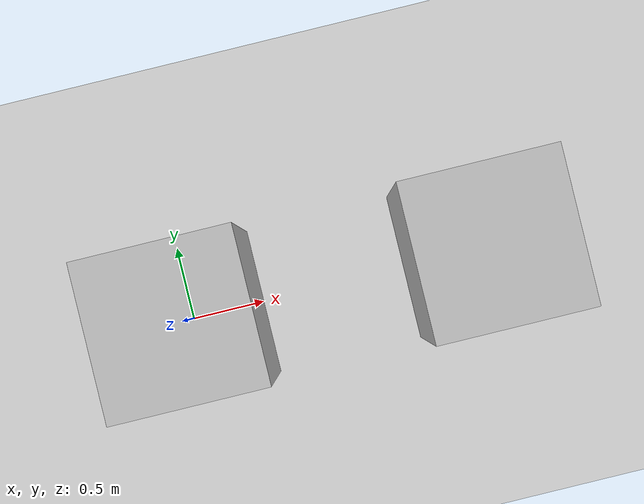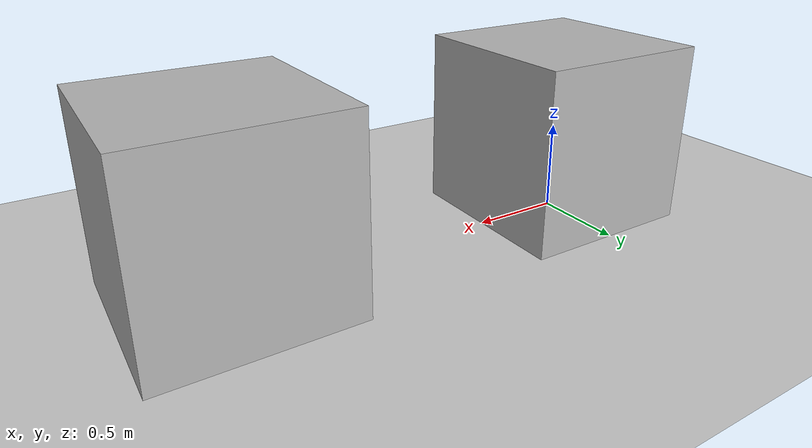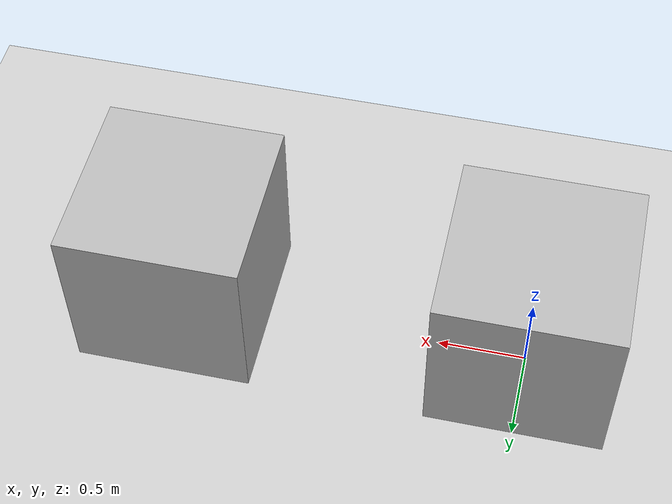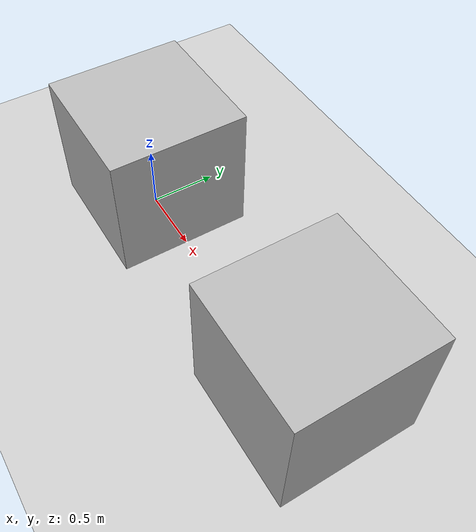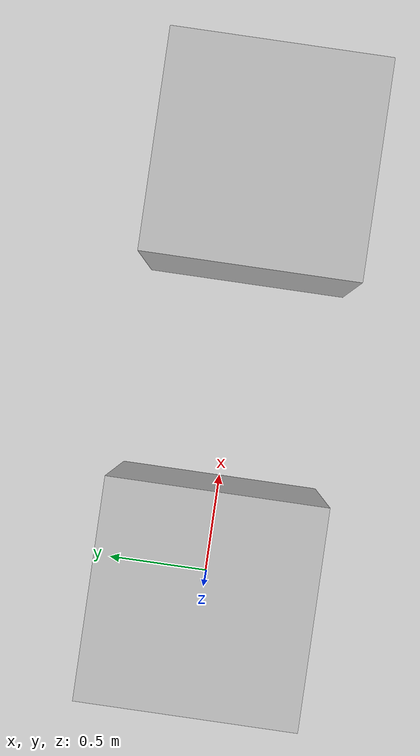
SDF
<?xml version="1.0" ?>
<sdf version="1.4">
  <world name="default">
    <include><uri>model://ground_plane</uri></include>
    <include><uri>model://sun</uri></include>

    <model name="multicamera_1">
      <pose>0 0 0.5 0 0 0</pose>
      <link name="link">
        <collision name="collision">
          <geometry>
            <box>
              <size>1 1 1</size>
            </box>
          </geometry>
        </collision>

        <visual name="visual">
          <geometry>
            <box>
              <size>1 1 1</size>
            </box>
          </geometry>
        </visual>

        <sensor name="cam1" type="multicamera">
          <update_rate>15</update_rate>
          <camera name="left">
            <horizontal_fov>1.3962634</horizontal_fov>
            <image>
              <width>1024</width>
              <height>544</height>
              <format>R8G8B8</format>
            </image>
            <clip>
              <near>0.02</near>
              <far>100</far>
            </clip>
          </camera>
        </sensor>
      </link>
    </model>

    <model name="multicamera_2">
      <pose>0 0 0.5 0 0 0</pose>
      <link name="link">
        <collision name="collision">
          <geometry>
            <box>
              <size>1 1 1</size>
            </box>
          </geometry>
        </collision>

        <visual name="visual">
          <geometry>
            <box>
              <size>1 1 1</size>
            </box>
          </geometry>
        </visual>

        <sensor name="cam2" type="multicamera">
          <update_rate>15</update_rate>
          <camera name="left">
            <horizontal_fov>1.3962634</horizontal_fov>
            <image>
              <width>1024</width>
              <height>544</height>
              <format>R8G8B8</format>
            </image>
            <clip>
              <near>0.02</near>
              <far>100</far>
            </clip>
          </camera>
          <camera name="right">
            <pose>0 -0.1 0 0 0 0</pose>
            <horizontal_fov>1.3962634</horizontal_fov>
            <image>
              <width>1024</width>
              <height>544</height>
              <format>R8G8B8</format>
            </image>
            <clip>
              <near>0.02</near>
              <far>100</far>
            </clip>
          </camera>
        </sensor>
      </link>
    </model>

    <model name="multicamera_3">
      <pose>2 0 0.5 0 0 0</pose>
      <link name="link">
        <collision name="collision">
          <geometry>
            <box>
              <size>1 1 1</size>
            </box>
          </geometry>
        </collision>

        <visual name="visual">
          <geometry>
            <box>
              <size>1 1 1</size>
            </box>
          </geometry>
        </visual>

        <sensor name="cam3" type="multicamera">
          <update_rate>15</update_rate>
          <camera name="top_left">
            <pose>0 -0.1 0.1 0 0 0</pose>
            <horizontal_fov>1.3962634</horizontal_fov>
            <image>
              <width>1024</width>
              <height>544</height>
              <format>R8G8B8</format>
            </image>
            <clip>
              <near>0.02</near>
              <far>100</far>
            </clip>
          </camera>
          <camera name="top_right">
            <pose>0 0.1 0.1 0 0 0</pose>
            <horizontal_fov>1.3962634</horizontal_fov>
            <image>
              <width>1024</width>
              <height>544</height>
              <format>R8G8B8</format>
            </image>
            <clip>
              <near>0.02</near>
              <far>100</far>
            </clip>
          </camera>

          <camera name="bottom_left">
            <pose>0 -0.1 -0.1 0 0 0</pose>
            <horizontal_fov>1.3962634</horizontal_fov>
            <image>
              <width>1024</width>
              <height>544</height>
              <format>R8G8B8</format>
            </image>
            <clip>
              <near>0.02</near>
              <far>100</far>
            </clip>
          </camera>
        </sensor>
      </link>
    </model>

    <model name="multicamera_4">
      <pose>2 0 0.5 0 0 0</pose>
      <link name="link">
        <collision name="collision">
          <geometry>
            <box>
              <size>1 1 1</size>
            </box>
          </geometry>
        </collision>

        <visual name="visual">
          <geometry>
            <box>
              <size>1 1 1</size>
            </box>
          </geometry>
        </visual>

        <sensor name="cam4" type="multicamera">
          <update_rate>15</update_rate>
          <camera name="top_left">
            <pose>0 -0.1 0.1 0 0 0</pose>
            <horizontal_fov>1.3962634</horizontal_fov>
            <image>
              <width>1024</width>
              <height>544</height>
              <format>R8G8B8</format>
            </image>
            <clip>
              <near>0.02</near>
              <far>100</far>
            </clip>
          </camera>
          <camera name="top_right">
            <pose>0 0.1 0.1 0 0 0</pose>
            <horizontal_fov>1.3962634</horizontal_fov>
            <image>
              <width>1024</width>
              <height>544</height>
              <format>R8G8B8</format>
            </image>
            <clip>
              <near>0.02</near>
              <far>100</far>
            </clip>
          </camera>

          <camera name="bottom_left">
            <pose>0 -0.1 -0.1 0 0 0</pose>
            <horizontal_fov>1.3962634</horizontal_fov>
            <image>
              <width>1024</width>
              <height>544</height>
              <format>R8G8B8</format>
            </image>
            <clip>
              <near>0.02</near>
              <far>100</far>
            </clip>
          </camera>

          <camera name="bottom_right">
            <pose>0 0.1 -0.1 0 0 0</pose>
            <horizontal_fov>1.3962634</horizontal_fov>
            <image>
              <width>1024</width>
              <height>544</height>
              <format>R8G8B8</format>
            </image>
            <clip>
              <near>0.02</near>
              <far>100</far>
            </clip>
          </camera>
        </sensor>
      </link>
    </model>

    <model name="multicamera_5">
      <pose>2 0 0.5 0 0 0</pose>
      <link name="link">
        <collision name="collision">
          <geometry>
            <box>
              <size>1 1 1</size>
            </box>
          </geometry>
        </collision>

        <visual name="visual">
          <geometry>
            <box>
              <size>1 1 1</size>
            </box>
          </geometry>
        </visual>

        <sensor name="cam5" type="multicamera">
          <update_rate>15</update_rate>
          <camera name="top_left">
            <pose>0 -0.1 0.1 0 0 0</pose>
            <horizontal_fov>1.3962634</horizontal_fov>
            <image>
              <width>1024</width>
              <height>544</height>
              <format>R8G8B8</format>
            </image>
            <clip>
              <near>0.02</near>
              <far>100</far>
            </clip>
          </camera>
          <camera name="top_right">
            <pose>0 0.1 0.1 0 0 0</pose>
            <horizontal_fov>1.3962634</horizontal_fov>
            <image>
              <width>1024</width>
              <height>544</height>
              <format>R8G8B8</format>
            </image>
            <clip>
              <near>0.02</near>
              <far>100</far>
            </clip>
          </camera>

          <camera name="bottom_left">
            <pose>0 -0.1 -0.1 0 0 0</pose>
            <horizontal_fov>1.3962634</horizontal_fov>
            <image>
              <width>1024</width>
              <height>544</height>
              <format>R8G8B8</format>
            </image>
            <clip>
              <near>0.02</near>
              <far>100</far>
            </clip>
          </camera>

          <camera name="bottom_right">
            <pose>0 0.1 -0.1 0 0 0</pose>
            <horizontal_fov>1.3962634</horizontal_fov>
            <image>
              <width>1024</width>
              <height>544</height>
              <format>R8G8B8</format>
            </image>
            <clip>
              <near>0.02</near>
              <far>100</far>
            </clip>
          </camera>

          <camera name="bottom_right_2">
            <pose>0 0.3 -0.1 0 0 0</pose>
            <horizontal_fov>1.3962634</horizontal_fov>
            <image>
              <width>1024</width>
              <height>544</height>
              <format>R8G8B8</format>
            </image>
            <clip>
              <near>0.02</near>
              <far>100</far>
            </clip>
          </camera>

        </sensor>
      </link>
    </model>

    <model name="multicamera_6">
      <pose>2 0 0.5 0 0 0</pose>
      <link name="link">
        <collision name="collision">
          <geometry>
            <box>
              <size>1 1 1</size>
            </box>
          </geometry>
        </collision>

        <visual name="visual">
          <geometry>
            <box>
              <size>1 1 1</size>
            </box>
          </geometry>
        </visual>

        <sensor name="cam6" type="multicamera">
          <update_rate>15</update_rate>
          <camera name="top_left">
            <pose>0 -0.1 0.1 0 0 0</pose>
            <horizontal_fov>1.3962634</horizontal_fov>
            <image>
              <width>1024</width>
              <height>544</height>
              <format>R8G8B8</format>
            </image>
            <clip>
              <near>0.02</near>
              <far>100</far>
            </clip>
          </camera>
          <camera name="top_right">
            <pose>0 0.1 0.1 0 0 0</pose>
            <horizontal_fov>1.3962634</horizontal_fov>
            <image>
              <width>1024</width>
              <height>544</height>
              <format>R8G8B8</format>
            </image>
            <clip>
              <near>0.02</near>
              <far>100</far>
            </clip>
            <noise>
              <type>gaussian</type>
              <mean>0.0</mean>
              <stddev>0.01</stddev>
            </noise>
          </camera>

          <camera name="bottom_left">
            <pose>0 -0.1 -0.1 0 0 0</pose>
            <horizontal_fov>1.3962634</horizontal_fov>
            <image>
              <width>1024</width>
              <height>544</height>
              <format>R8G8B8</format>
            </image>
            <clip>
              <near>0.02</near>
              <far>100</far>
            </clip>
            <noise>
              <type>gaussian</type>
              <mean>0.0</mean>
              <stddev>0.01</stddev>
            </noise>
          </camera>

          <camera name="bottom_right">
            <pose>0 0.1 -0.1 0 0 0</pose>
            <horizontal_fov>1.3962634</horizontal_fov>
            <image>
              <width>1024</width>
              <height>544</height>
              <format>R8G8B8</format>
            </image>
            <clip>
              <near>0.02</near>
              <far>100</far>
            </clip>
            <noise>
              <type>gaussian</type>
              <mean>0.0</mean>
              <stddev>0.1</stddev>
            </noise>
          </camera>

          <camera name="bottom_right_2">
            <pose>0 0.3 -0.1 0 0 0</pose>
            <horizontal_fov>1.3962634</horizontal_fov>
            <image>
              <width>1024</width>
              <height>544</height>
              <format>R8G8B8</format>
            </image>
            <clip>
              <near>0.02</near>
              <far>100</far>
            </clip>
            <noise>
              <type>gaussian</type>
              <mean>0.0</mean>
              <stddev>1</stddev>
            </noise>
          </camera>

          <camera name="bottom_right_3">
            <pose>0 0.3 -0.1 0 0 0</pose>
            <horizontal_fov>1.3962634</horizontal_fov>
            <image>
              <width>1024</width>
              <height>544</height>
              <format>R8G8B8</format>
            </image>
            <clip>
              <near>0.02</near>
              <far>100</far>
            </clip>
            <noise>
              <type>gaussian</type>
              <mean>0.0</mean>
              <stddev>10</stddev>
            </noise>
          </camera>

        </sensor>
      </link>
    </model>
  </world>
</sdf>
